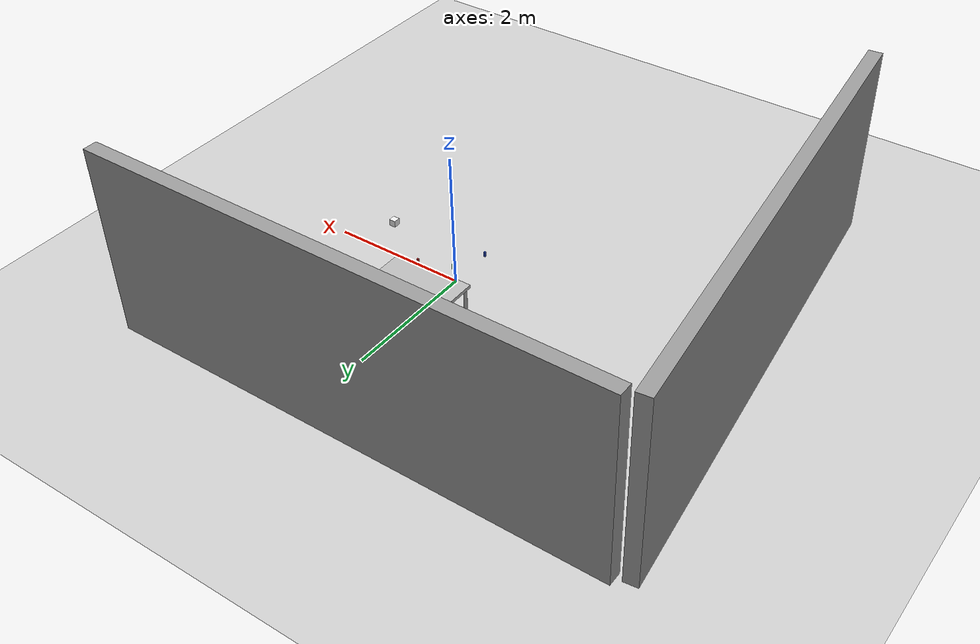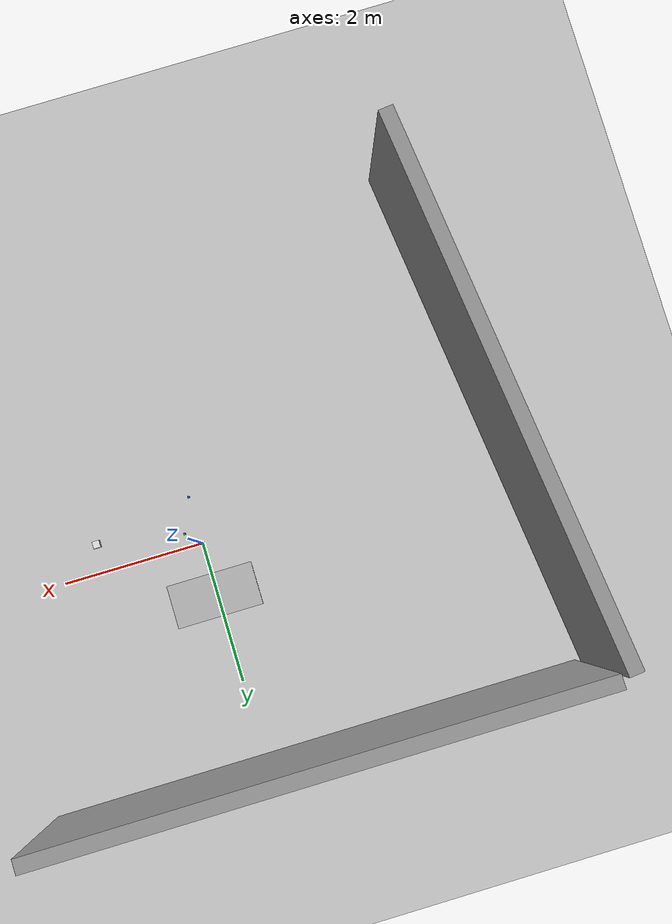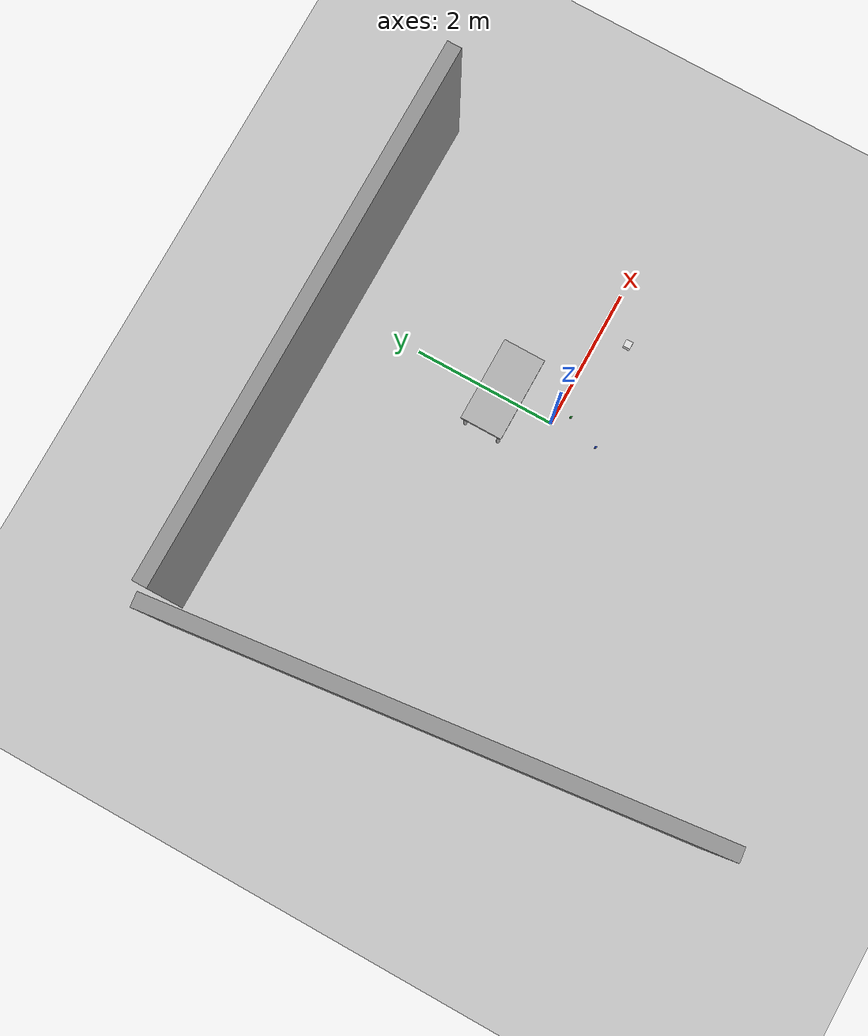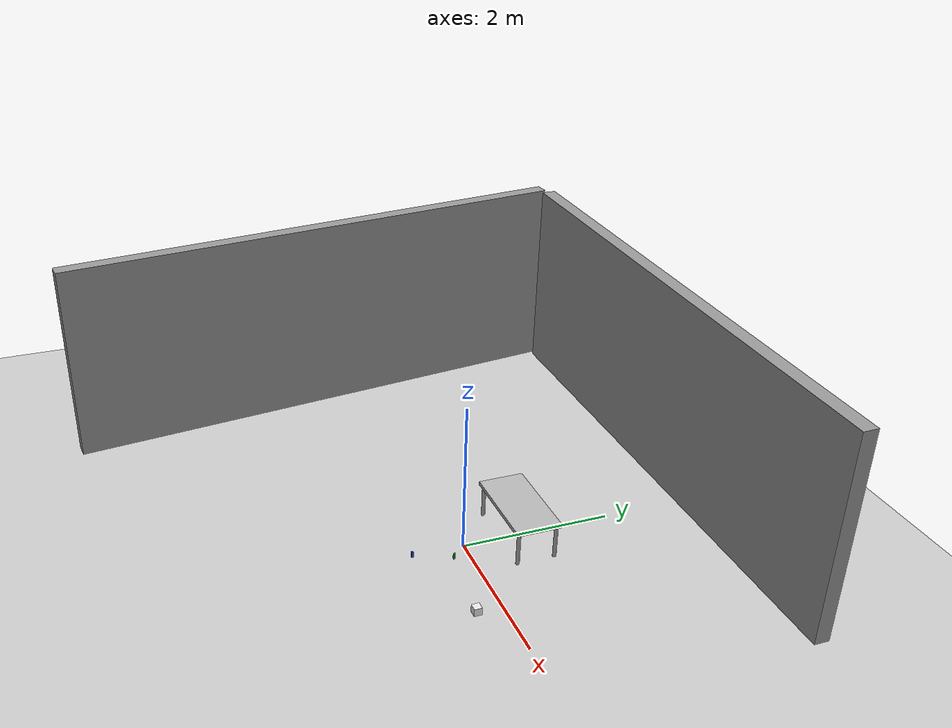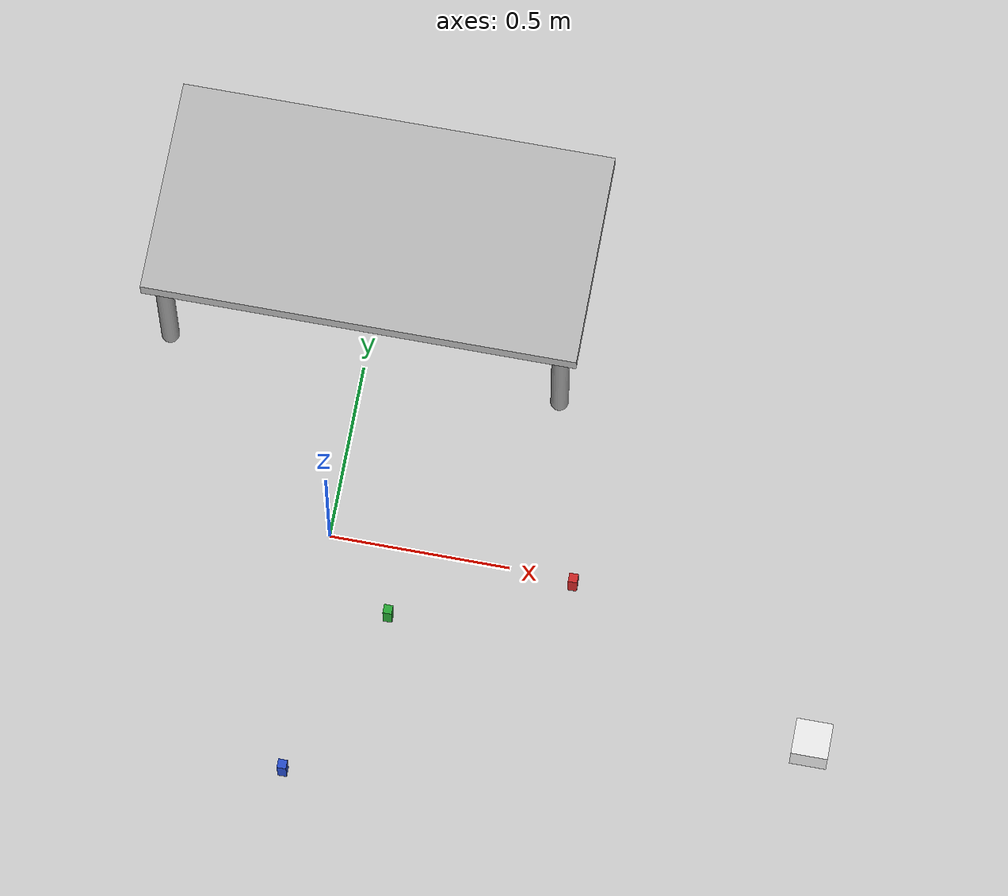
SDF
<sdf version="1.7">
 <world name="custom_world">
  <light name="sun" type="directional">
   <pose>0 0 10 0 -0 0</pose>
   <diffuse>0.8 0.8 0.8 1</diffuse>
   <specular>0.2 0.2 0.2 1</specular>
   <attenuation>
    <range>1000</range>
    <constant>0.9</constant>
    <linear>0.01</linear>
    <quadratic>0.001</quadratic>
   </attenuation>
   <direction>-0.5 0.1 -0.9</direction>
   <spot><inner_angle>0</inner_angle><outer_angle>0</outer_angle><falloff>0</falloff></spot>
  </light>
  <model name="ground_plane">
   <static>1</static>
   <link name="link">
    <collision name="collision">
     <geometry><plane><normal>0 0 1</normal><size>100 100</size></plane></geometry>
     <surface>
      <contact><collide_bitmask>65535</collide_bitmask></contact>
      <friction><ode><mu>100</mu><mu2>50</mu2></ode></friction>
     </surface>
    </collision>
    <visual name="visual">
     <cast_shadows>0</cast_shadows>
     <geometry><plane><normal>0 0 1</normal><size>100 100</size></plane></geometry>
     <material>
      <script>
       <uri>file:///home/rosam/new_ros2_ws/install/robotic_arms_control/share/robotic_arms_control/textures/__auto_.jpg</uri>
       <name>Gazebo/Grey</name>
      </script>
     </material>
    </visual>
   </link>
  </model>
  <gravity>0 0 -9.8</gravity>
  <magnetic_field>6e-06 2.3e-05 -4.2e-05</magnetic_field>
  <atmosphere type="adiabatic"/>
  <physics type="ode">
   <max_step_size>0.001</max_step_size>
   <real_time_factor>1</real_time_factor>
   <real_time_update_rate>1000</real_time_update_rate>
  </physics>
  <scene><ambient>0.4 0.4 0.4 1</ambient><background>0.7 0.7 0.7 1</background><shadows>1</shadows></scene>
  <spherical_coordinates>
   <surface_model>EARTH_WGS84</surface_model>
   <latitude_deg>0</latitude_deg>
   <longitude_deg>0</longitude_deg>
   <elevation>0</elevation>
   <heading_deg>0</heading_deg>
  </spherical_coordinates>
  <model name="box_red">
   <pose>0.682 -0.02 0.04 -1.1e-05 -4e-06 -2e-06</pose>
   <link name="link">
    <inertial>
     <mass>0.1</mass>
     <inertia><ixx>0.15</ixx><iyy>0.15</iyy><izz>0.15</izz><ixy>0</ixy><ixz>0</ixz><iyz>0</iyz></inertia>
    </inertial>
    <collision name="collision">
     <geometry><box><size>0.025 0.025 0.08</size></box></geometry>
     <surface><contact><ode><mu>1.0</mu><mu2>1.0</mu2></ode></contact></surface>
    </collision>
    <visual name="visual">
     <geometry><box><size>0.025 0.025 0.08</size></box></geometry>
     <material>
      <script><uri>file://media/materials/scripts/gazebo.material</uri><name>Gazebo/Red</name></script>
     </material>
    </visual>
   </link>
  </model>
  <model name="box_green">
   <pose>0.2 -0.2 0.04 -1.1e-05 -4e-06 -2e-06</pose>
   <link name="link">
    <inertial>
     <mass>0.1</mass>
     <inertia><ixx>0.15</ixx><iyy>0.15</iyy><izz>0.15</izz><ixy>0</ixy><ixz>0</ixz><iyz>0</iyz></inertia>
    </inertial>
    <collision name="collision">
     <geometry><box><size>0.025 0.025 0.08</size></box></geometry>
     <surface><contact><ode><mu>1.0</mu><mu2>1.0</mu2></ode></contact></surface>
    </collision>
    <visual name="visual">
     <geometry><box><size>0.025 0.025 0.08</size></box></geometry>
     <material>
      <script><uri>file://media/materials/scripts/gazebo.material</uri><name>Gazebo/Green</name></script>
     </material>
    </visual>
   </link>
  </model>
  <model name="box_blue">
   <pose>-0 -0.682 0.04 -1.1e-05 -4e-06 -2e-06</pose>
   <link name="link">
    <inertial>
     <mass>0.1</mass>
     <inertia><ixx>0.15</ixx><iyy>0.15</iyy><izz>0.15</izz><ixy>0</ixy><ixz>0</ixz><iyz>0</iyz></inertia>
    </inertial>
    <collision name="collision">
     <geometry><box><size>0.025 0.025 0.08</size></box></geometry>
     <surface><contact><ode><mu>1.0</mu><mu2>1.0</mu2></ode></contact></surface>
    </collision>
    <visual name="visual">
     <geometry><box><size>0.025 0.025 0.08</size></box></geometry>
     <material>
      <script><uri>file://media/materials/scripts/gazebo.material</uri><name>Gazebo/Blue</name></script>
     </material>
    </visual>
   </link>
  </model>
  <model name="table">
   <static>1</static>
   <pose>0 0.75 0 0 -0 0</pose>
   <link name="link">
    <collision name="tabletop_collision">
     <pose>0 0 0.475 0 -0 0</pose>
     <geometry><box><size>1.2 0.6 0.05</size></box></geometry>
     <surface>
      <friction><ode><mu>200</mu><mu2>100</mu2></ode></friction>
      <bounce><restitution_coefficient>0</restitution_coefficient></bounce>
     </surface>
    </collision>
    <visual name="tabletop_visual">
     <pose>0 0 0.475 0 -0 0</pose>
     <geometry><box><size>1.2 0.6 0.05</size></box></geometry>
     <material>
      <script>
       <uri>file:///home/rosam/new_ros2_ws/install/robotic_arms_control/share/robotic_arms_control/textures/__auto_.jpg</uri>
       <name>__default__</name>
      </script>
     </material>
    </visual>
    <collision name="leg1_collision">
     <pose>0.55 0.25 0.225 0 -0 0</pose>
     <geometry><cylinder><radius>0.025</radius><length>0.45</length></cylinder></geometry>
    </collision>
    <visual name="leg1_visual">
     <pose>0.55 0.25 0.225 0 -0 0</pose>
     <geometry><cylinder><radius>0.025</radius><length>0.45</length></cylinder></geometry>
     <material>
      <script><uri>file://media/materials/scripts/gazebo.material</uri><name>Gazebo/Grey</name></script>
     </material>
    </visual>
    <collision name="leg2_collision">
     <pose>0.55 -0.25 0.225 0 -0 0</pose>
     <geometry><cylinder><radius>0.025</radius><length>0.45</length></cylinder></geometry>
    </collision>
    <visual name="leg2_visual">
     <pose>0.55 -0.25 0.225 0 -0 0</pose>
     <geometry><cylinder><radius>0.025</radius><length>0.45</length></cylinder></geometry>
     <material>
      <script><uri>file://media/materials/scripts/gazebo.material</uri><name>Gazebo/Grey</name></script>
     </material>
    </visual>
    <collision name="leg3_collision">
     <pose>-0.55 0.25 0.225 0 -0 0</pose>
     <geometry><cylinder><radius>0.025</radius><length>0.45</length></cylinder></geometry>
    </collision>
    <visual name="leg3_visual">
     <pose>-0.55 0.25 0.225 0 -0 0</pose>
     <geometry><cylinder><radius>0.025</radius><length>0.45</length></cylinder></geometry>
     <material>
      <script><uri>file://media/materials/scripts/gazebo.material</uri><name>Gazebo/Grey</name></script>
     </material>
    </visual>
    <collision name="leg4_collision">
     <pose>-0.55 -0.25 0.225 0 -0 0</pose>
     <geometry><cylinder><radius>0.025</radius><length>0.45</length></cylinder></geometry>
    </collision>
    <visual name="leg4_visual">
     <pose>-0.55 -0.25 0.225 0 -0 0</pose>
     <geometry><cylinder><radius>0.025</radius><length>0.45</length></cylinder></geometry>
     <material>
      <script><uri>file://media/materials/scripts/gazebo.material</uri><name>Gazebo/Grey</name></script>
     </material>
    </visual>
   </link>
  </model>
  <model name="fixed_camera">
   <static>1</static>
   <pose>1.4 -0.4 0.2 3.14159 -9.3e-05 3.14159</pose>
   <link name="link">
    <visual name="visual">
     <geometry><box><size>0.1 0.1 0.1</size></box></geometry>
     <material>
      <script><uri>file://media/materials/scripts/gazebo.material</uri><name>Gazebo/White</name></script>
     </material>
    </visual>
    <sensor name="camera_sensor" type="depth">
     <camera>
      <horizontal_fov>1.047</horizontal_fov>
      <image><width>640</width><height>480</height><format>R8G8B8</format></image>
      <clip><near>0.3</near><far>100</far></clip>
     </camera>
     <always_on>1</always_on>
     <update_rate>30</update_rate>
     <visualize>1</visualize>
     <plugin name="depth_camera" filename="libgazebo_ros_camera.so">
      <ros>
       <namespace>/</namespace>
       <argument>depth:=/camera/depth</argument>
       <argument>image:=/camera/image_raw</argument>
       <argument>camera_info:=/camera/camera_info</argument>
      </ros>
      <frame_name>camera_link</frame_name>
      <hack_baseline>0.01</hack_baseline>
     </plugin>
    </sensor>
   </link>
  </model>
  <plugin name="gazebo_link_attacher" filename="libgazebo_link_attacher.so"/>
  <plugin name="gazebo_ros_state" filename="libgazebo_ros_state.so">
   <ros>
    <namespace>/robotic_arms_control</namespace>
    <argument>model_states:=model_states</argument>
    <argument>link_states:=link_states</argument>
   </ros>
   <update_rate>1.0</update_rate>
  </plugin>
  <plugin name="gazebo_ros_properties" filename="libgazebo_ros_properties.so">
   <ros><namespace>/robotic_arms_control</namespace></ros>
  </plugin>
  <audio><device>default</device></audio>
  <model name="grey_wall">
   <static>1</static>
   <link name="link">
    <pose>0 0 1.4 0 -0 0</pose>
    <collision name="collision"><geometry><box><size>7.5 0.2 2.8</size></box></geometry></collision>
    <visual name="visual">
     <cast_shadows>0</cast_shadows>
     <geometry><box><size>7.5 0.2 2.8</size></box></geometry>
     <material>
      <script>
       <uri>model://grey_wall/materials/scripts</uri>
       <uri>model://grey_wall/materials/textures</uri>
       <name>vrc/grey_wall</name>
      </script>
     </material>
    </visual>
   </link>
   <pose>-4.2804 -0.606193 0 0 -0 1.68413</pose>
  </model>
  <model name="grey_wall_0">
   <static>1</static>
   <link name="link">
    <pose>0 0 1.4 0 -0 0</pose>
    <collision name="collision"><geometry><box><size>7.5 0.2 2.8</size></box></geometry></collision>
    <visual name="visual">
     <cast_shadows>0</cast_shadows>
     <geometry><box><size>7.5 0.2 2.8</size></box></geometry>
     <material>
      <script>
       <uri>model://grey_wall/materials/scripts</uri>
       <uri>model://grey_wall/materials/textures</uri>
       <name>vrc/grey_wall</name>
      </script>
     </material>
    </visual>
   </link>
   <pose>-0.776169 3.15115 0 0 -0 0</pose>
  </model>
 </world>
</sdf>
